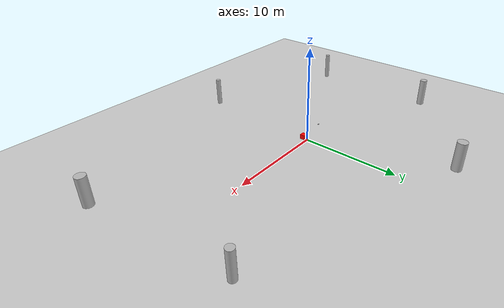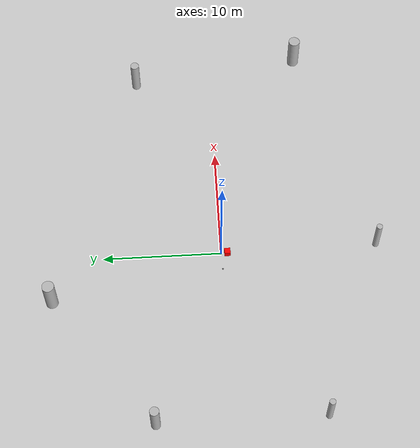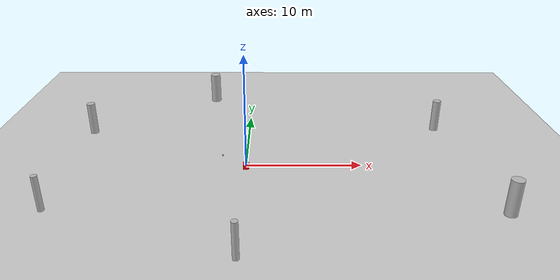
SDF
<?xml version="1.0"?>
<sdf version="1.6">
  <world name="default">
    <!-- GUI -->
		<gui>
			<camera name="gui_camera">
				<pose>-7.6 5.6 5.9 0.0 0.6 -0.85</pose>
			</camera>
		</gui>

		<!-- Lighting -->
    <include>
      <uri>model://sun</uri>
    </include>

		<!-- Ground -->
    <include>
      <uri>model://ground_plane</uri>
    </include>

    <!-- Box -->
    <include>
      <uri>model://box</uri>
      <pose>0.0 -0.5 0.25 0.0 0.0 0.0</pose>
			<static>true</static>
    </include>

		<!-- Cylinder -->
    <include>
      <uri>model://cylinder</uri>
      <pose>0.0 0.5 0.3 0.0 0.0 0.0</pose>
			<static>true</static>
    </include>

    <!-- Depth Camera -->
    <include>
      <uri>model://depth_camera</uri>
      <pose>-2.0 0.0 1.0 0.0 0.4 0.0</pose>
			<static>true</static>
    </include>
  </world>
</sdf>

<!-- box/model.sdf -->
<sdf version="1.5">
  <model name="box">
    <link name="link">
      <visual name="visual">
        <geometry>
          <box>
            <size>0.5 0.5 0.5</size>
          </box>
        </geometry>
        <material>
          <ambient>1 0 0 1</ambient>
          <diffuse>1 0 0 1</diffuse>
        </material>
      </visual>
    </link>
  </model>
</sdf>

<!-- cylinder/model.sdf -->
<sdf version="1.5">
    <model name="cylinder">
        <static>true</static>
        <link name="link">
            <collision name="collision1">
                <pose>20 -8.4 0 0 0 0</pose>
                <geometry>
                    <mesh>
                        <uri>model://cylinder/meshes/cylinder_1.stl</uri>
                    </mesh>
                </geometry>
            </collision>
            <visual name="visual1">

              <pose>20 -8.4 0 0 0 0</pose>
              <geometry>
              <mesh>
                 <uri>model://cylinder/meshes/cylinder_1.dae</uri>
              </mesh>
              </geometry>

              <material>
                  <script>
                      <uri>model://cylinder/materials/scripts</uri>
                      <uri>model://cylinder/materials/textures</uri>
                      <name>cylinderMat/Diffuse</name>
                  </script>
              </material>
             </visual>

             <collision name="collision2">
                <pose>-4 13.7 0 0 0 0</pose>
                <geometry>
                    <mesh>
                        <uri>model://cylinder/meshes/cylinder_1.stl</uri>
                    </mesh>
                </geometry>
            </collision>
            <visual name="visual2">

              <pose>-4 13.7 0 0 0 0</pose>
              <geometry>
              <mesh>
                 <uri>model://cylinder/meshes/cylinder_1.dae</uri>
              </mesh>
              </geometry>

              <material>
                  <script>
                      <uri>model://cylinder/materials/scripts</uri>
                      <uri>model://cylinder/materials/textures</uri>
                      <name>cylinderMat/Diffuse</name>
                  </script>
              </material>
             </visual>

             <collision name="collision3">
                <pose>-15 -8 0 0 0 0</pose>
                <geometry>
                    <mesh>
                        <uri>model://cylinder/meshes/cylinder_0_5.stl</uri>
                    </mesh>
                </geometry>
            </collision>
            <visual name="visual3">

              <pose>-15 -8 0 0 0 0</pose>
              <geometry>
              <mesh>
                 <uri>model://cylinder/meshes/cylinder_0_5.dae</uri>
              </mesh>
              </geometry>

              <material>
                  <script>
                      <uri>model://cylinder/materials/scripts</uri>
                      <uri>model://cylinder/materials/textures</uri>
                      <name>cylinderMat/Diffuse</name>
                  </script>
              </material>
             </visual>

             <collision name="collision4">
                <pose>0 -13.6 0 0 0 0</pose>
                <geometry>
                    <mesh>
                        <uri>model://cylinder/meshes/cylinder_0_5.stl</uri>
                    </mesh>
                </geometry>
            </collision>
            <visual name="visual4">

              <pose>0 -13.6 0 0 0 0</pose>
              <geometry>
              <mesh>
                 <uri>model://cylinder/meshes/cylinder_0_5.dae</uri>
              </mesh>
              </geometry>

              <material>
                  <script>
                      <uri>model://cylinder/materials/scripts</uri>
                      <uri>model://cylinder/materials/textures</uri>
                      <name>cylinderMat/Diffuse</name>
                  </script>
              </material>
             </visual>

             <collision name="collision5">
                <pose>18 6.3 0 0 0 0</pose>
                <geometry>
                    <mesh>
                        <uri>model://cylinder/meshes/cylinder_0_75.stl</uri>
                    </mesh>
                </geometry>
            </collision>
            <visual name="visual5">

              <pose>18 6.3 0 0 0 0</pose>
              <geometry>
              <mesh>
                 <uri>model://cylinder/meshes/cylinder_0_75.dae</uri>
              </mesh>
              </geometry>

              <material>
                  <script>
                      <uri>model://cylinder/materials/scripts</uri>
                      <uri>model://cylinder/materials/textures</uri>
                      <name>cylinderMat/Diffuse</name>
                  </script>
              </material>
             </visual>

             <collision name="collision6">
                <pose>-15 5.5 0 0 0 0</pose>
                <geometry>
                    <mesh>
                        <uri>model://cylinder/meshes/cylinder_0_75.stl</uri>
                    </mesh>
                </geometry>
            </collision>
            <visual name="visual6">

              <pose>-15 5.5 0 0 0 0</pose>
              <geometry>
              <mesh>
                 <uri>model://cylinder/meshes/cylinder_0_75.dae</uri>
              </mesh>
              </geometry>

              <material>
                  <script>
                      <uri>model://cylinder/materials/scripts</uri>
                      <uri>model://cylinder/materials/textures</uri>
                      <name>cylinderMat/Diffuse</name>
                  </script>
              </material>
             </visual>

        </link>
    </model>
</sdf>

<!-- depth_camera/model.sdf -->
<sdf version="1.5">
  <model name="depth_camera">

    <link name="link">
      <visual name="visual">
        <geometry>
          <box>
            <size>0.1 0.1 0.1</size>
          </box>
        </geometry>
      </visual>

      <sensor name="depth_camera" type="depth">
        <camera name="__default__">
          <horizontal_fov>1.047</horizontal_fov>
          <image>
            <width>320</width>
            <height>240</height>
          </image>
          <clip>
            <near>0.1</near>
            <far>100</far>
          </clip>
          <noise>
            <type>gaussian</type>
            <mean>0.0</mean>
            <stddev>0.007</stddev>
          </noise>
        </camera>
        <always_on>1</always_on>
        <update_rate>60</update_rate>
        <visualize>true</visualize>

        <plugin name="my_depth_plugin" filename="libmy_depth_plugin.so">
          <depth_topic>/my_depth_camera/depth</depth_topic>
          <rgb_topic>/my_depth_camera/rgb</rgb_topic>
        </plugin>
      </sensor>

    </link>

    <plugin name="my_depth_plugin" filename="libmy_pose_plugin.so">
      <frame_id>/my_depth_camera</frame_id>
      <pose_topic>/my_depth_camera/pose</pose_topic>
      <pose_set_topic>/my_depth_camera/pose/set</pose_set_topic>
    </plugin>
  </model>
</sdf>
